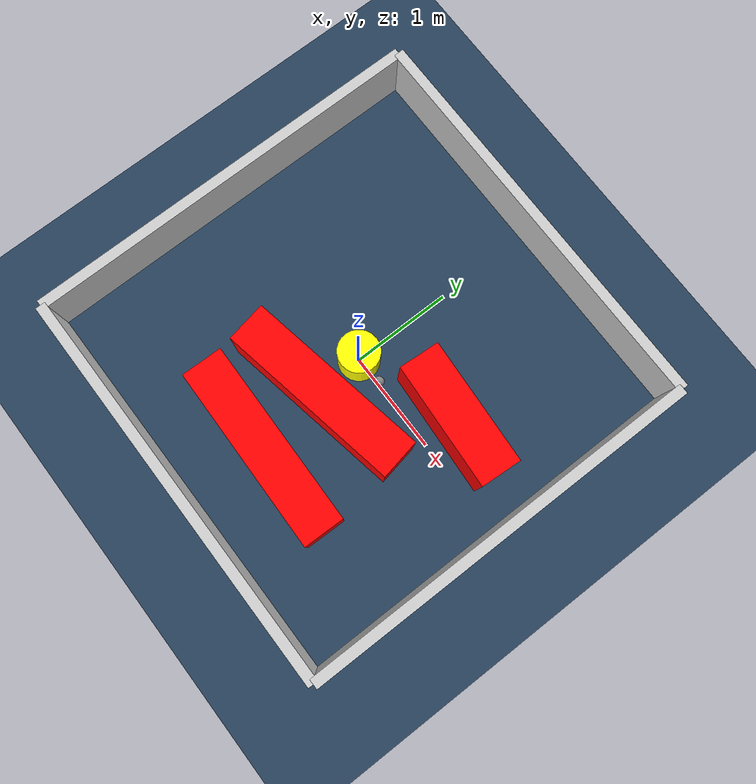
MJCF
<?xml version="1.0" ?>
<mujoco model="generated_environment">
  <option timestep="0.01" integrator="RK4" cone="elliptic"/>
  <default>
    <geom density="1"/>
  </default>
  <asset>
    <texture builtin="gradient" height="3072" rgb1="0.3 0.5 0.7" rgb2="0 0 0" type="skybox" width="512"/>
    <texture builtin="checker" height="300" mark="edge" markrgb="0.8 0.8 0.8" name="groundplane" rgb1="0.2 0.3 0.4" rgb2="0.1 0.2 0.3" type="2d" width="300"/>
    <material name="groundplane" reflectance="0.2" texrepeat="5 5" texture="groundplane" texuniform="true"/>
    <material name="robot" rgba="0.0 1.0 0.0 1"/>
  </asset>
  <worldbody>
    <light dir="0 0 -1" directional="true" pos="0 0 1.5"/>
    <geom condim="4" friction="1.0 0.005 0.001" material="groundplane" name="floor" size="0 0 0.05" type="plane"/>
    <body name="walls">
      <geom name="wall_1" condim="4" pos="-2.0 0.0 0.3" rgba="0.800000011920929 0.800000011920929 0.800000011920929 1.0" size="0.05 2.0 0.3" type="box"/>
      <geom name="wall_2" condim="4" pos="2.0 0.0 0.3" rgba="0.800000011920929 0.800000011920929 0.800000011920929 1.0" size="0.05 2.0 0.3" type="box"/>
      <geom name="wall_3" condim="4" pos="0.0 -2.0 0.3" rgba="0.800000011920929 0.800000011920929 0.800000011920929 1.0" size="2.0 0.05 0.3" type="box"/>
      <geom name="wall_4" condim="4" pos="0.0 2.0 0.3" rgba="0.800000011920929 0.800000011920929 0.800000011920929 1.0" size="2.0 0.05 0.3" type="box"/>
    </body>
    <body name="robot">
      <joint name="joint_x" type="slide" pos="0 0 0" axis="1 0 0"/>
      <joint name="joint_y" type="slide" pos="0 0 0" axis="0 1 0"/>
      <geom name="robot" type="sphere" pos="0.3 0.0 0.2" size="0.05" mass="5." friction="1.0 0.005 0.0001" condim="4" rgba="0.5 0.5 0.5 1.0"/>
      <site name="sensor_ball"/>
    </body>
    <body name="obstacle_movable_1">
      <geom name="obstacle_movable_1" condim="4" pos="0.0 0.0 0.2" euler="0 0 0.0" friction="1.0 0.005 0.001" rgba="1.0 1.0 0.0 1.0" size="0.2 0.2 0.0" type="cylinder" mass="0.1"/>
      <joint type="free"/>
    </body>
    <body name="obstacle_2_static">
      <geom name="obstacle_2_static" condim="4" pos="0.10697852173312428 -0.48432434935855273 0.3" euler="0 0 10.679068839176896" friction="1.0 0.005 0.001" rgba="1 0 0 1" size="0.9041318519199233 0.2 0.3" type="box"/>
    </body>
    <body name="obstacle_3_static">
      <geom name="obstacle_3_static" condim="4" pos="0.9933301694034768 0.3301798154223279 0.3" euler="0 0 356.3384616153416" friction="1.0 0.005 0.001" rgba="1 0 0 1" size="0.6187691403703325 0.2 0.3" type="box"/>
    </body>
    <body name="obstacle_4_static">
      <geom name="obstacle_4_static" condim="4" pos="0.18145321023869454 -1.1846427320958366 0.3" euler="0 0 178.8734360960071" friction="1.0 0.005 0.001" rgba="1 0 0 1" size="0.9090098913392368 0.2 0.3" type="box"/>
    </body>
  </worldbody>
  <actuator>
    <motor name="actuator_x" joint="joint_x" gear="1" ctrlrange="-1 1"/>
    <motor name="actuator_y" joint="joint_y" gear="1" ctrlrange="-1 1"/>
  </actuator>
</mujoco>
